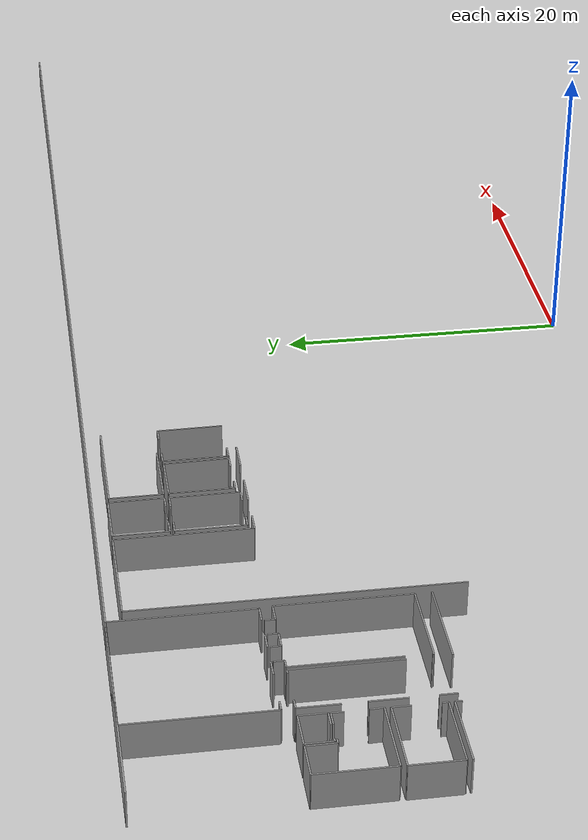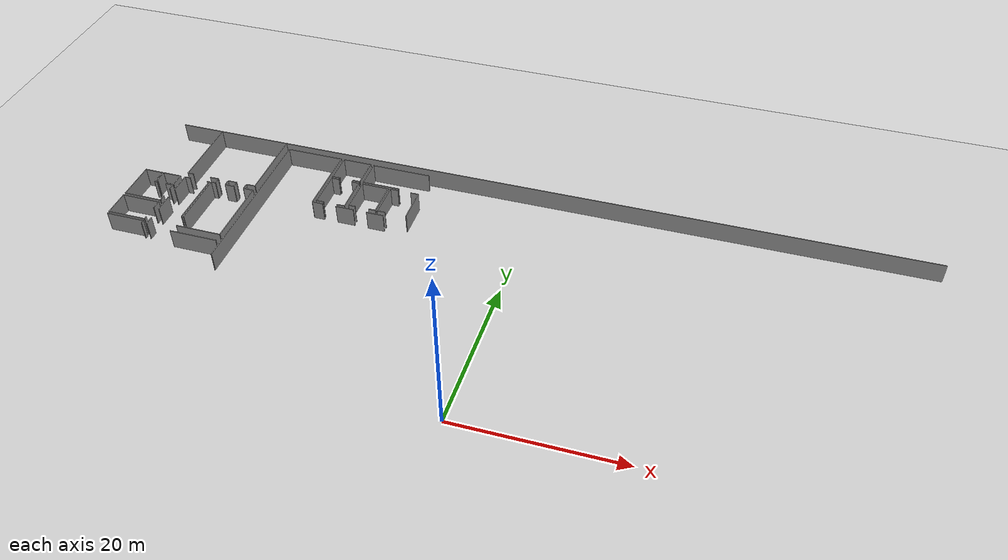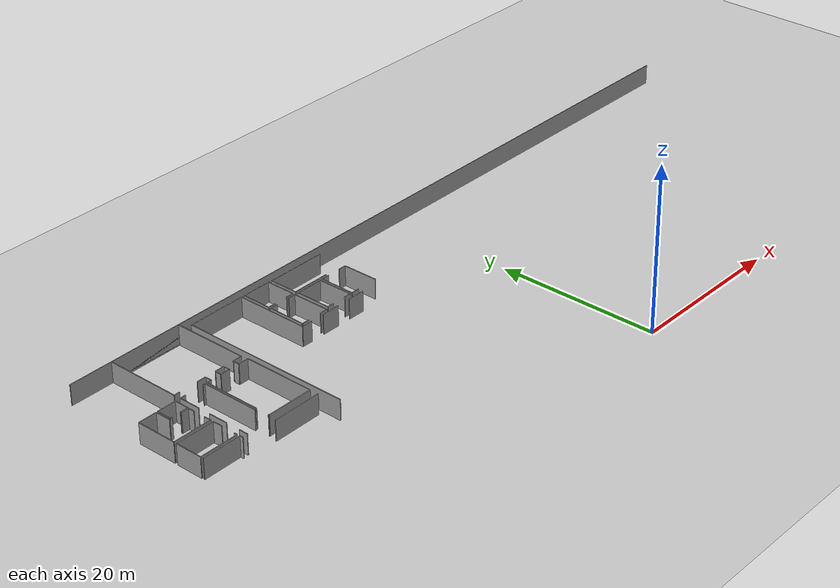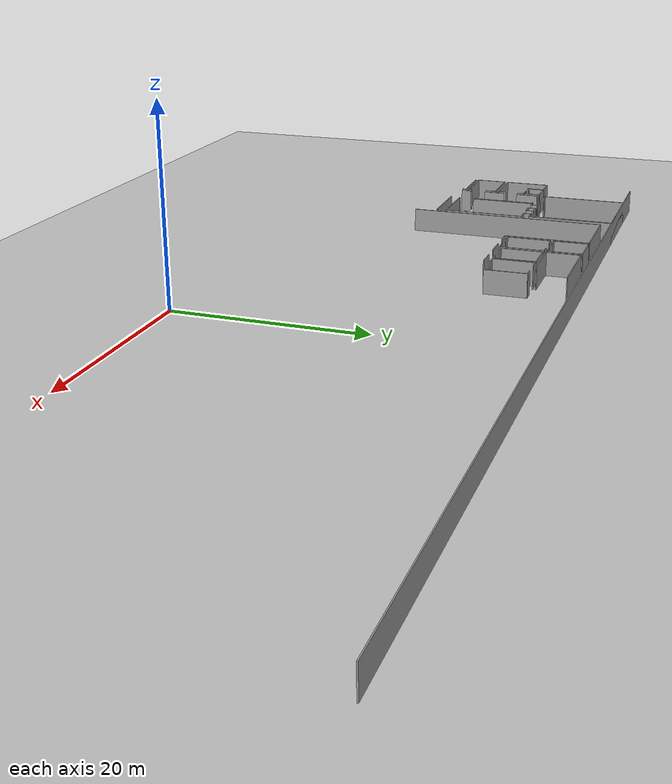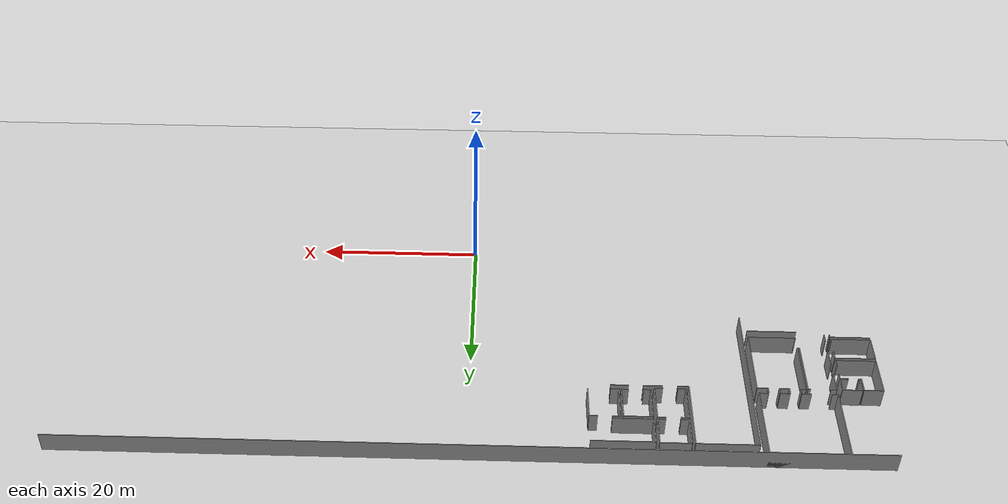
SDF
<sdf version="1.6">
 <world name="default">
  <model name="ground_plane">
   <static>1</static>
   <link name="link">
    <collision name="collision">
     <geometry><plane><normal>0 0 1</normal><size>100 100</size></plane></geometry>
     <surface><friction><ode><mu>100</mu><mu2>50</mu2></ode></friction></surface>
    </collision>
    <visual name="visual">
     <cast_shadows>0</cast_shadows>
     <geometry><plane><normal>0 0 1</normal><size>100 100</size></plane></geometry>
     <material>
      <script><uri>file://media/materials/scripts/gazebo.material</uri><name>Gazebo/Grey</name></script>
     </material>
    </visual>
   </link>
  </model>
  <model name="50053292">
   <static>1</static>
   <link name="Wall_0">
    <collision name="Wall_0_Collision">
     <geometry><box><size>1.1175532962 0.1 2.5</size></box></geometry>
     <pose>0.558776648102 0 1.25 0 0 0</pose>
    </collision>
    <visual name="Wall_0_Visual">
     <pose>0.558776648102 0 1.25 0 0 0</pose>
     <geometry><box><size>1.1175532962 0.1 2.5</size></box></geometry>
     <material>
      <script><uri>file://media/materials/scripts/gazebo.material</uri><name>Gazebo/Grey</name></script>
      <ambient>1 1 1 1</ambient>
     </material>
    </visual>
    <pose>14.6841600569 -9.18695108244 0 0 0 3.14159265359</pose>
   </link>
   <link name="Wall_1">
    <collision name="Wall_1_Collision">
     <geometry><box><size>1.16187948104 0.1 2.5</size></box></geometry>
     <pose>0.58093974052 0 1.25 0 0 0</pose>
    </collision>
    <visual name="Wall_1_Visual">
     <pose>0.58093974052 0 1.25 0 0 0</pose>
     <geometry><box><size>1.16187948104 0.1 2.5</size></box></geometry>
     <material>
      <script><uri>file://media/materials/scripts/gazebo.material</uri><name>Gazebo/Grey</name></script>
      <ambient>1 1 1 1</ambient>
     </material>
    </visual>
    <pose>12.2086251897 -9.18695108244 0 0 0 3.14159265359</pose>
   </link>
   <link name="Wall_2">
    <collision name="Wall_2_Collision">
     <geometry><box><size>1.14016092056 0.1 2.5</size></box></geometry>
     <pose>0.570080460281 0 1.25 0 0 0</pose>
    </collision>
    <visual name="Wall_2_Visual">
     <pose>0.570080460281 0 1.25 0 0 0</pose>
     <geometry><box><size>1.14016092056 0.1 2.5</size></box></geometry>
     <material>
      <script><uri>file://media/materials/scripts/gazebo.material</uri><name>Gazebo/Grey</name></script>
      <ambient>1 1 1 1</ambient>
     </material>
    </visual>
    <pose>9.70337018715 -9.18695108244 0 0 0 3.14159265359</pose>
   </link>
   <link name="Wall_3">
    <collision name="Wall_3_Collision">
     <geometry><box><size>0.717855577923 0.1 2.5</size></box></geometry>
     <pose>0.358927788962 0 1.25 0 0 0</pose>
    </collision>
    <visual name="Wall_3_Visual">
     <pose>0.358927788962 0 1.25 0 0 0</pose>
     <geometry><box><size>0.717855577923 0.1 2.5</size></box></geometry>
     <material>
      <script><uri>file://media/materials/scripts/gazebo.material</uri><name>Gazebo/Grey</name></script>
      <ambient>1 1 1 1</ambient>
     </material>
    </visual>
    <pose>6.18483638049 -9.18695108244 0 0 0 3.14159265359</pose>
   </link>
   <link name="Wall_4">
    <collision name="Wall_4_Collision">
     <geometry><box><size>9.18695108244 0.1 2.5</size></box></geometry>
     <pose>4.59347554122 0 1.25 0 0 0</pose>
    </collision>
    <visual name="Wall_4_Visual">
     <pose>4.59347554122 0 1.25 0 0 0</pose>
     <geometry><box><size>9.18695108244 0.1 2.5</size></box></geometry>
     <material>
      <script><uri>file://media/materials/scripts/gazebo.material</uri><name>Gazebo/Grey</name></script>
      <ambient>1 1 1 1</ambient>
     </material>
    </visual>
    <pose>5.46698080257 -9.18695108244 0 0 0 1.57079632679</pose>
   </link>
   <link name="Wall_5">
    <collision name="Wall_5_Collision">
     <geometry><box><size>9.18885621932 0.1 2.5</size></box></geometry>
     <pose>4.59442810966 0 1.25 0 0 0</pose>
    </collision>
    <visual name="Wall_5_Visual">
     <pose>4.59442810966 0 1.25 0 0 0</pose>
     <geometry><box><size>9.18885621932 0.1 2.5</size></box></geometry>
     <material>
      <script><uri>file://media/materials/scripts/gazebo.material</uri><name>Gazebo/Grey</name></script>
      <ambient>1 1 1 1</ambient>
     </material>
    </visual>
    <pose>5.46698080257 -0.0 0 0 0 0.0</pose>
   </link>
   <link name="Wall_6">
    <collision name="Wall_6_Collision">
     <geometry><box><size>9.18699474177 0.1 2.5</size></box></geometry>
     <pose>4.59349737089 0 1.25 0 0 0</pose>
    </collision>
    <visual name="Wall_6_Visual">
     <pose>4.59349737089 0 1.25 0 0 0</pose>
     <geometry><box><size>9.18699474177 0.1 2.5</size></box></geometry>
     <material>
      <script><uri>file://media/materials/scripts/gazebo.material</uri><name>Gazebo/Grey</name></script>
      <ambient>1 1 1 1</ambient>
     </material>
    </visual>
    <pose>14.6558370219 -0.0 0 0 0 -1.56771337305</pose>
   </link>
   <link name="Wall_11">
    <collision name="Wall_11_Collision">
     <geometry><box><size>5.99368764646 0.1 2.5</size></box></geometry>
     <pose>2.99684382323 0 1.25 0 0 0</pose>
    </collision>
    <visual name="Wall_11_Visual">
     <pose>2.99684382323 0 1.25 0 0 0</pose>
     <geometry><box><size>5.99368764646 0.1 2.5</size></box></geometry>
     <material>
      <script><uri>file://media/materials/scripts/gazebo.material</uri><name>Gazebo/Grey</name></script>
      <ambient>1 1 1 1</ambient>
     </material>
    </visual>
    <pose>14.8546063035 -19.7261683252 0 0 0 3.14159265359</pose>
   </link>
   <link name="Wall_13">
    <collision name="Wall_13_Collision">
     <geometry><box><size>6.97940547028 0.1 2.5</size></box></geometry>
     <pose>3.48970273514 0 1.25 0 0 0</pose>
    </collision>
    <visual name="Wall_13_Visual">
     <pose>3.48970273514 0 1.25 0 0 0</pose>
     <geometry><box><size>6.97940547028 0.1 2.5</size></box></geometry>
     <material>
      <script><uri>file://media/materials/scripts/gazebo.material</uri><name>Gazebo/Grey</name></script>
      <ambient>1 1 1 1</ambient>
     </material>
    </visual>
    <pose>8.86091865701 -16.9900107323 0 0 0 1.57079632679</pose>
   </link>
   <link name="Wall_14">
    <collision name="Wall_14_Collision">
     <geometry><box><size>0.307743111343 0.1 2.5</size></box></geometry>
     <pose>0.153871555671 0 1.25 0 0 0</pose>
    </collision>
    <visual name="Wall_14_Visual">
     <pose>0.153871555671 0 1.25 0 0 0</pose>
     <geometry><box><size>0.307743111343 0.1 2.5</size></box></geometry>
     <material>
      <script><uri>file://media/materials/scripts/gazebo.material</uri><name>Gazebo/Grey</name></script>
      <ambient>1 1 1 1</ambient>
     </material>
    </visual>
    <pose>8.86091865701 -10.010605262 0 0 0 3.14159265359</pose>
   </link>
   <link name="Wall_15">
    <collision name="Wall_15_Collision">
     <geometry><box><size>0.701090373343 0.1 2.5</size></box></geometry>
     <pose>0.350545186672 0 1.25 0 0 0</pose>
    </collision>
    <visual name="Wall_15_Visual">
     <pose>0.350545186672 0 1.25 0 0 0</pose>
     <geometry><box><size>0.701090373343 0.1 2.5</size></box></geometry>
     <material>
      <script><uri>file://media/materials/scripts/gazebo.material</uri><name>Gazebo/Grey</name></script>
      <ambient>1 1 1 1</ambient>
     </material>
    </visual>
    <pose>6.20401475846 -10.010605262 0 0 0 3.14159265359</pose>
   </link>
   <link name="Wall_16">
    <collision name="Wall_16_Collision">
     <geometry><box><size>2.61295874109 0.1 2.5</size></box></geometry>
     <pose>1.30647937054 0 1.25 0 0 0</pose>
    </collision>
    <visual name="Wall_16_Visual">
     <pose>1.30647937054 0 1.25 0 0 0</pose>
     <geometry><box><size>2.61295874109 0.1 2.5</size></box></geometry>
     <material>
      <script><uri>file://media/materials/scripts/gazebo.material</uri><name>Gazebo/Grey</name></script>
      <ambient>1 1 1 1</ambient>
     </material>
    </visual>
    <pose>5.50292438512 -10.010605262 0 0 0 -1.57079632679</pose>
   </link>
   <link name="Wall_17">
    <collision name="Wall_17_Collision">
     <geometry><box><size>2.3640208549 0.1 2.5</size></box></geometry>
     <pose>1.18201042745 0 1.25 0 0 0</pose>
    </collision>
    <visual name="Wall_17_Visual">
     <pose>1.18201042745 0 1.25 0 0 0</pose>
     <geometry><box><size>2.3640208549 0.1 2.5</size></box></geometry>
     <material>
      <script><uri>file://media/materials/scripts/gazebo.material</uri><name>Gazebo/Grey</name></script>
      <ambient>1 1 1 1</ambient>
     </material>
    </visual>
    <pose>5.50292438512 -14.1378938077 0 0 0 -1.57079632679</pose>
   </link>
   <link name="Wall_18">
    <collision name="Wall_18_Collision">
     <geometry><box><size>1.09481866272 0.1 2.5</size></box></geometry>
     <pose>0.54740933136 0 1.25 0 0 0</pose>
    </collision>
    <visual name="Wall_18_Visual">
     <pose>0.54740933136 0 1.25 0 0 0</pose>
     <geometry><box><size>1.09481866272 0.1 2.5</size></box></geometry>
     <material>
      <script><uri>file://media/materials/scripts/gazebo.material</uri><name>Gazebo/Grey</name></script>
      <ambient>1 1 1 1</ambient>
     </material>
    </visual>
    <pose>5.50292438512 -18.2240313967 0 0 0 -1.57079632679</pose>
   </link>
   <link name="Wall_23">
    <collision name="Wall_23_Collision">
     <geometry><box><size>5.71706177089 0.1 2.5</size></box></geometry>
     <pose>2.85853088544 0 1.25 0 0 0</pose>
    </collision>
    <visual name="Wall_23_Visual">
     <pose>2.85853088544 0 1.25 0 0 0</pose>
     <geometry><box><size>5.71706177089 0.1 2.5</size></box></geometry>
     <material>
      <script><uri>file://media/materials/scripts/gazebo.material</uri><name>Gazebo/Grey</name></script>
      <ambient>1 1 1 1</ambient>
     </material>
    </visual>
    <pose>14.8231080403 -18.6576405515 0 0 0 3.14159265359</pose>
   </link>
   <link name="Wall_24">
    <collision name="Wall_24_Collision">
     <geometry><box><size>0.085350132407 0.1 2.5</size></box></geometry>
     <pose>0.0426750662035 0 1.25 0 0 0</pose>
    </collision>
    <visual name="Wall_24_Visual">
     <pose>0.0426750662035 0 1.25 0 0 0</pose>
     <geometry><box><size>0.085350132407 0.1 2.5</size></box></geometry>
     <material>
      <script><uri>file://media/materials/scripts/gazebo.material</uri><name>Gazebo/Grey</name></script>
      <ambient>1 1 1 1</ambient>
     </material>
    </visual>
    <pose>9.10604626942 -18.6576405515 0 0 0 1.57079632679</pose>
   </link>
   <link name="Wall_25">
    <collision name="Wall_25_Collision">
     <geometry><box><size>6.95108243527 0.1 2.5</size></box></geometry>
     <pose>3.47554121764 0 1.25 0 0 0</pose>
    </collision>
    <visual name="Wall_25_Visual">
     <pose>3.47554121764 0 1.25 0 0 0</pose>
     <geometry><box><size>6.95108243527 0.1 2.5</size></box></geometry>
     <material>
      <script><uri>file://media/materials/scripts/gazebo.material</uri><name>Gazebo/Grey</name></script>
      <ambient>1 1 1 1</ambient>
     </material>
    </visual>
    <pose>9.10604626942 -16.9550832227 0 0 0 1.57079632679</pose>
   </link>
   <link name="Wall_26">
    <collision name="Wall_26_Collision">
     <geometry><box><size>0.584495996037 0.1 2.5</size></box></geometry>
     <pose>0.292247998019 0 1.25 0 0 0</pose>
    </collision>
    <visual name="Wall_26_Visual">
     <pose>0.292247998019 0 1.25 0 0 0</pose>
     <geometry><box><size>0.584495996037 0.1 2.5</size></box></geometry>
     <material>
      <script><uri>file://media/materials/scripts/gazebo.material</uri><name>Gazebo/Grey</name></script>
      <ambient>1 1 1 1</ambient>
     </material>
    </visual>
    <pose>9.10604626942 -10.0040007875 0 0 0 0.0</pose>
   </link>
   <link name="Wall_27">
    <collision name="Wall_27_Collision">
     <geometry><box><size>0.676704621227 0.1 2.5</size></box></geometry>
     <pose>0.338352310614 0 1.25 0 0 0</pose>
    </collision>
    <visual name="Wall_27_Visual">
     <pose>0.338352310614 0 1.25 0 0 0</pose>
     <geometry><box><size>0.676704621227 0.1 2.5</size></box></geometry>
     <material>
      <script><uri>file://media/materials/scripts/gazebo.material</uri><name>Gazebo/Grey</name></script>
      <ambient>1 1 1 1</ambient>
     </material>
    </visual>
    <pose>9.69054226546 -10.0040007875 0 0 0 1.57079632679</pose>
   </link>
   <link name="Wall_28">
    <collision name="Wall_28_Collision">
     <geometry><box><size>0.672767338333 0.1 2.5</size></box></geometry>
     <pose>0.336383669167 0 1.25 0 0 0</pose>
    </collision>
    <visual name="Wall_28_Visual">
     <pose>0.336383669167 0 1.25 0 0 0</pose>
     <geometry><box><size>0.672767338333 0.1 2.5</size></box></geometry>
     <material>
      <script><uri>file://media/materials/scripts/gazebo.material</uri><name>Gazebo/Grey</name></script>
      <ambient>1 1 1 1</ambient>
     </material>
    </visual>
    <pose>11.0334097505 -9.32729616623 0 0 0 -1.57079632679</pose>
   </link>
   <link name="Wall_29">
    <collision name="Wall_29_Collision">
     <geometry><box><size>1.1750884301 0.1 2.5</size></box></geometry>
     <pose>0.587544215052 0 1.25 0 0 0</pose>
    </collision>
    <visual name="Wall_29_Visual">
     <pose>0.587544215052 0 1.25 0 0 0</pose>
     <geometry><box><size>1.1750884301 0.1 2.5</size></box></geometry>
     <material>
      <script><uri>file://media/materials/scripts/gazebo.material</uri><name>Gazebo/Grey</name></script>
      <ambient>1 1 1 1</ambient>
     </material>
    </visual>
    <pose>11.0334097505 -10.0000635046 0 0 0 0.0</pose>
   </link>
   <link name="Wall_30">
    <collision name="Wall_30_Collision">
     <geometry><box><size>0.658923343642 0.1 2.5</size></box></geometry>
     <pose>0.329461671821 0 1.25 0 0 0</pose>
    </collision>
    <visual name="Wall_30_Visual">
     <pose>0.329461671821 0 1.25 0 0 0</pose>
     <geometry><box><size>0.658923343642 0.1 2.5</size></box></geometry>
     <material>
      <script><uri>file://media/materials/scripts/gazebo.material</uri><name>Gazebo/Grey</name></script>
      <ambient>1 1 1 1</ambient>
     </material>
    </visual>
    <pose>12.2084981806 -10.0000635046 0 0 0 1.57079632679</pose>
   </link>
   <link name="Wall_31">
    <collision name="Wall_31_Collision">
     <geometry><box><size>0.664384736043 0.1 2.5</size></box></geometry>
     <pose>0.332192368022 0 1.25 0 0 0</pose>
    </collision>
    <visual name="Wall_31_Visual">
     <pose>0.332192368022 0 1.25 0 0 0</pose>
     <geometry><box><size>0.664384736043 0.1 2.5</size></box></geometry>
     <material>
      <script><uri>file://media/materials/scripts/gazebo.material</uri><name>Gazebo/Grey</name></script>
      <ambient>1 1 1 1</ambient>
     </material>
    </visual>
    <pose>13.5263448679 -9.34114016092 0 0 0 -1.57079632679</pose>
   </link>
   <link name="Wall_32">
    <collision name="Wall_32_Collision">
     <geometry><box><size>1.29041271615 0.1 2.5</size></box></geometry>
     <pose>0.645206358077 0 1.25 0 0 0</pose>
    </collision>
    <visual name="Wall_32_Visual">
     <pose>0.645206358077 0 1.25 0 0 0</pose>
     <geometry><box><size>1.29041271615 0.1 2.5</size></box></geometry>
     <material>
      <script><uri>file://media/materials/scripts/gazebo.material</uri><name>Gazebo/Grey</name></script>
      <ambient>1 1 1 1</ambient>
     </material>
    </visual>
    <pose>13.5263448679 -10.005524897 0 0 0 0.0</pose>
   </link>
   <link name="Wall_33">
    <collision name="Wall_33_Collision">
     <geometry><box><size>8.65211798505 0.1 2.5</size></box></geometry>
     <pose>4.32605899253 0 1.25 0 0 0</pose>
    </collision>
    <visual name="Wall_33_Visual">
     <pose>4.32605899253 0 1.25 0 0 0</pose>
     <geometry><box><size>8.65211798505 0.1 2.5</size></box></geometry>
     <material>
      <script><uri>file://media/materials/scripts/gazebo.material</uri><name>Gazebo/Grey</name></script>
      <ambient>1 1 1 1</ambient>
     </material>
    </visual>
    <pose>14.816757584 -10.005524897 0 0 0 -1.57006234965</pose>
   </link>
   <link name="Wall_34">
    <collision name="Wall_34_Collision">
     <geometry><box><size>4.82431462701 0.1 2.5</size></box></geometry>
     <pose>2.4121573135 0 1.25 0 0 0</pose>
    </collision>
    <visual name="Wall_34_Visual">
     <pose>2.4121573135 0 1.25 0 0 0</pose>
     <geometry><box><size>4.82431462701 0.1 2.5</size></box></geometry>
     <material>
      <script><uri>file://media/materials/scripts/gazebo.material</uri><name>Gazebo/Grey</name></script>
      <ambient>1 1 1 1</ambient>
     </material>
    </visual>
    <pose>4.86114727343 -14.9540544488 0 0 0 3.14159265359</pose>
   </link>
   <link name="Wall_35">
    <collision name="Wall_35_Collision">
     <geometry><box><size>4.92871612825 0.1 2.5</size></box></geometry>
     <pose>2.46435806413 0 1.25 0 0 0</pose>
    </collision>
    <visual name="Wall_35_Visual">
     <pose>2.46435806413 0 1.25 0 0 0</pose>
     <geometry><box><size>4.92871612825 0.1 2.5</size></box></geometry>
     <material>
      <script><uri>file://media/materials/scripts/gazebo.material</uri><name>Gazebo/Grey</name></script>
      <ambient>1 1 1 1</ambient>
     </material>
    </visual>
    <pose>0.0368326464256 -14.9540544488 0 0 0 1.57079632679</pose>
   </link>
   <link name="Wall_36">
    <collision name="Wall_36_Collision">
     <geometry><box><size>2.28654528828 0.1 2.5</size></box></geometry>
     <pose>1.14327264414 0 1.25 0 0 0</pose>
    </collision>
    <visual name="Wall_36_Visual">
     <pose>1.14327264414 0 1.25 0 0 0</pose>
     <geometry><box><size>2.28654528828 0.1 2.5</size></box></geometry>
     <material>
      <script><uri>file://media/materials/scripts/gazebo.material</uri><name>Gazebo/Grey</name></script>
      <ambient>1 1 1 1</ambient>
     </material>
    </visual>
    <pose>0.0368326464256 -10.0253383206 0 0 0 0.0</pose>
   </link>
   <link name="Wall_37">
    <collision name="Wall_37_Collision">
     <geometry><box><size>1.86906629241 0.1 2.5</size></box></geometry>
     <pose>0.934533146207 0 1.25 0 0 0</pose>
    </collision>
    <visual name="Wall_37_Visual">
     <pose>0.934533146207 0 1.25 0 0 0</pose>
     <geometry><box><size>1.86906629241 0.1 2.5</size></box></geometry>
     <material>
      <script><uri>file://media/materials/scripts/gazebo.material</uri><name>Gazebo/Grey</name></script>
      <ambient>1 1 1 1</ambient>
     </material>
    </visual>
    <pose>2.3233779347 -10.0253383206 0 0 0 -1.57079632679</pose>
   </link>
   <link name="Wall_38">
    <collision name="Wall_38_Collision">
     <geometry><box><size>0.342543611759 0.1 2.5</size></box></geometry>
     <pose>0.171271805879 0 1.25 0 0 0</pose>
    </collision>
    <visual name="Wall_38_Visual">
     <pose>0.171271805879 0 1.25 0 0 0</pose>
     <geometry><box><size>0.342543611759 0.1 2.5</size></box></geometry>
     <material>
      <script><uri>file://media/materials/scripts/gazebo.material</uri><name>Gazebo/Grey</name></script>
      <ambient>1 1 1 1</ambient>
     </material>
    </visual>
    <pose>2.3233779347 -11.894404613 0 0 0 0.0</pose>
   </link>
   <link name="Wall_39">
    <collision name="Wall_39_Collision">
     <geometry><box><size>0.979748394922 0.1 2.5</size></box></geometry>
     <pose>0.489874197461 0 1.25 0 0 0</pose>
    </collision>
    <visual name="Wall_39_Visual">
     <pose>0.489874197461 0 1.25 0 0 0</pose>
     <geometry><box><size>0.979748394922 0.1 2.5</size></box></geometry>
     <material>
      <script><uri>file://media/materials/scripts/gazebo.material</uri><name>Gazebo/Grey</name></script>
      <ambient>1 1 1 1</ambient>
     </material>
    </visual>
    <pose>3.84621735072 -11.894404613 0 0 0 0.0</pose>
   </link>
   <link name="Wall_40">
    <collision name="Wall_40_Collision">
     <geometry><box><size>0.760784662378 0.1 2.5</size></box></geometry>
     <pose>0.380392331189 0 1.25 0 0 0</pose>
    </collision>
    <visual name="Wall_40_Visual">
     <pose>0.380392331189 0 1.25 0 0 0</pose>
     <geometry><box><size>0.760784662378 0.1 2.5</size></box></geometry>
     <material>
      <script><uri>file://media/materials/scripts/gazebo.material</uri><name>Gazebo/Grey</name></script>
      <ambient>1 1 1 1</ambient>
     </material>
    </visual>
    <pose>4.82596574564 -11.894404613 0 0 0 -1.57079632679</pose>
   </link>
   <link name="Wall_41">
    <collision name="Wall_41_Collision">
     <geometry><box><size>0.873261668576 0.1 2.5</size></box></geometry>
     <pose>0.436630834288 0 1.25 0 0 0</pose>
    </collision>
    <visual name="Wall_41_Visual">
     <pose>0.436630834288 0 1.25 0 0 0</pose>
     <geometry><box><size>0.873261668576 0.1 2.5</size></box></geometry>
     <material>
      <script><uri>file://media/materials/scripts/gazebo.material</uri><name>Gazebo/Grey</name></script>
      <ambient>1 1 1 1</ambient>
     </material>
    </visual>
    <pose>4.82596574564 -14.0815017559 0 0 0 -1.53049792243</pose>
   </link>
   <link name="Wall_42">
    <collision name="Wall_42_Collision">
     <geometry><box><size>0.990163143222 0.1 2.5</size></box></geometry>
     <pose>0.495081571611 0 1.25 0 0 0</pose>
    </collision>
    <visual name="Wall_42_Visual">
     <pose>0.495081571611 0 1.25 0 0 0</pose>
     <geometry><box><size>0.990163143222 0.1 2.5</size></box></geometry>
     <material>
      <script><uri>file://media/materials/scripts/gazebo.material</uri><name>Gazebo/Grey</name></script>
      <ambient>1 1 1 1</ambient>
     </material>
    </visual>
    <pose>4.85238364376 -11.759901949 0 0 0 3.14159265359</pose>
   </link>
   <link name="Wall_43">
    <collision name="Wall_43_Collision">
     <geometry><box><size>0.206389829109 0.1 2.5</size></box></geometry>
     <pose>0.103194914555 0 1.25 0 0 0</pose>
    </collision>
    <visual name="Wall_43_Visual">
     <pose>0.103194914555 0 1.25 0 0 0</pose>
     <geometry><box><size>0.206389829109 0.1 2.5</size></box></geometry>
     <material>
      <script><uri>file://media/materials/scripts/gazebo.material</uri><name>Gazebo/Grey</name></script>
      <ambient>1 1 1 1</ambient>
     </material>
    </visual>
    <pose>2.69373654497 -11.759901949 0 0 0 3.14159265359</pose>
   </link>
   <link name="Wall_44">
    <collision name="Wall_44_Collision">
     <geometry><box><size>1.74701052271 0.1 2.5</size></box></geometry>
     <pose>0.873505261353 0 1.25 0 0 0</pose>
    </collision>
    <visual name="Wall_44_Visual">
     <pose>0.873505261353 0 1.25 0 0 0</pose>
     <geometry><box><size>1.74701052271 0.1 2.5</size></box></geometry>
     <material>
      <script><uri>file://media/materials/scripts/gazebo.material</uri><name>Gazebo/Grey</name></script>
      <ambient>1 1 1 1</ambient>
     </material>
    </visual>
    <pose>2.48734671586 -11.759901949 0 0 0 1.57079632679</pose>
   </link>
   <link name="Wall_45">
    <collision name="Wall_45_Collision">
     <geometry><box><size>2.36262375452 0.1 2.5</size></box></geometry>
     <pose>1.18131187726 0 1.25 0 0 0</pose>
    </collision>
    <visual name="Wall_45_Visual">
     <pose>1.18131187726 0 1.25 0 0 0</pose>
     <geometry><box><size>2.36262375452 0.1 2.5</size></box></geometry>
     <material>
      <script><uri>file://media/materials/scripts/gazebo.material</uri><name>Gazebo/Grey</name></script>
      <ambient>1 1 1 1</ambient>
     </material>
    </visual>
    <pose>2.48734671586 -10.0128914262 0 0 0 0.0</pose>
   </link>
   <link name="Wall_46">
    <collision name="Wall_46_Collision">
     <geometry><box><size>1.74701218938 0.1 2.5</size></box></geometry>
     <pose>0.873506094691 0 1.25 0 0 0</pose>
    </collision>
    <visual name="Wall_46_Visual">
     <pose>0.873506094691 0 1.25 0 0 0</pose>
     <geometry><box><size>1.74701218938 0.1 2.5</size></box></geometry>
     <material>
      <script><uri>file://media/materials/scripts/gazebo.material</uri><name>Gazebo/Grey</name></script>
      <ambient>1 1 1 1</ambient>
     </material>
    </visual>
    <pose>4.84997047038 -10.0128914262 0 0 0 -1.56941501179</pose>
   </link>
   <link name="Wall_47">
    <collision name="Wall_47_Collision">
     <geometry><box><size>4.80729540417 0.1 2.5</size></box></geometry>
     <pose>2.40364770209 0 1.25 0 0 0</pose>
    </collision>
    <visual name="Wall_47_Visual">
     <pose>2.40364770209 0 1.25 0 0 0</pose>
     <geometry><box><size>4.80729540417 0.1 2.5</size></box></geometry>
     <material>
      <script><uri>file://media/materials/scripts/gazebo.material</uri><name>Gazebo/Grey</name></script>
      <ambient>1 1 1 1</ambient>
     </material>
    </visual>
    <pose>4.82342556313 -18.6295715347 0 0 0 3.14159265359</pose>
   </link>
   <link name="Wall_48">
    <collision name="Wall_48_Collision">
     <geometry><box><size>3.29677587335 0.1 2.5</size></box></geometry>
     <pose>1.64838793667 0 1.25 0 0 0</pose>
    </collision>
    <visual name="Wall_48_Visual">
     <pose>1.64838793667 0 1.25 0 0 0</pose>
     <geometry><box><size>3.29677587335 0.1 2.5</size></box></geometry>
     <material>
      <script><uri>file://media/materials/scripts/gazebo.material</uri><name>Gazebo/Grey</name></script>
      <ambient>1 1 1 1</ambient>
     </material>
    </visual>
    <pose>0.0161301589519 -18.6295715347 0 0 0 1.57079632679</pose>
   </link>
   <link name="Wall_49">
    <collision name="Wall_49_Collision">
     <geometry><box><size>4.81453492433 0.1 2.5</size></box></geometry>
     <pose>2.40726746217 0 1.25 0 0 0</pose>
    </collision>
    <visual name="Wall_49_Visual">
     <pose>2.40726746217 0 1.25 0 0 0</pose>
     <geometry><box><size>4.81453492433 0.1 2.5</size></box></geometry>
     <material>
      <script><uri>file://media/materials/scripts/gazebo.material</uri><name>Gazebo/Grey</name></script>
      <ambient>1 1 1 1</ambient>
     </material>
    </visual>
    <pose>0.0161301589519 -15.3327956614 0 0 0 0.0</pose>
   </link>
   <link name="Wall_50">
    <collision name="Wall_50_Collision">
     <geometry><box><size>1.17635852136 0.1 2.5</size></box></geometry>
     <pose>0.58817926068 0 1.25 0 0 0</pose>
    </collision>
    <visual name="Wall_50_Visual">
     <pose>0.58817926068 0 1.25 0 0 0</pose>
     <geometry><box><size>1.17635852136 0.1 2.5</size></box></geometry>
     <material>
      <script><uri>file://media/materials/scripts/gazebo.material</uri><name>Gazebo/Grey</name></script>
      <ambient>1 1 1 1</ambient>
     </material>
    </visual>
    <pose>4.83066508329 -15.3327956614 0 0 0 -1.57079632679</pose>
   </link>
   <link name="Wall_51">
    <collision name="Wall_51_Collision">
     <geometry><box><size>0.374619869722 0.1 2.5</size></box></geometry>
     <pose>0.187309934861 0 1.25 0 0 0</pose>
    </collision>
    <visual name="Wall_51_Visual">
     <pose>0.187309934861 0 1.25 0 0 0</pose>
     <geometry><box><size>0.374619869722 0.1 2.5</size></box></geometry>
     <material>
      <script><uri>file://media/materials/scripts/gazebo.material</uri><name>Gazebo/Grey</name></script>
      <ambient>1 1 1 1</ambient>
     </material>
    </visual>
    <pose>4.83066508329 -18.2550216233 0 0 0 -1.59012250628</pose>
   </link>
   <link name="Wall_57">
    <collision name="Wall_57_Collision">
     <geometry><box><size>4.82698181864 0.1 2.5</size></box></geometry>
     <pose>2.41349090932 0 1.25 0 0 0</pose>
    </collision>
    <visual name="Wall_57_Visual">
     <pose>2.41349090932 0 1.25 0 0 0</pose>
     <geometry><box><size>4.82698181864 0.1 2.5</size></box></geometry>
     <material>
      <script><uri>file://media/materials/scripts/gazebo.material</uri><name>Gazebo/Grey</name></script>
      <ambient>1 1 1 1</ambient>
     </material>
    </visual>
    <pose>0.0116848395557 -18.9731312195 0 0 0 0.0</pose>
   </link>
   <link name="Wall_58">
    <collision name="Wall_58_Collision">
     <geometry><box><size>0.434244200446 0.1 2.5</size></box></geometry>
     <pose>0.217122100223 0 1.25 0 0 0</pose>
    </collision>
    <visual name="Wall_58_Visual">
     <pose>0.217122100223 0 1.25 0 0 0</pose>
     <geometry><box><size>0.434244200446 0.1 2.5</size></box></geometry>
     <material>
      <script><uri>file://media/materials/scripts/gazebo.material</uri><name>Gazebo/Grey</name></script>
      <ambient>1 1 1 1</ambient>
     </material>
    </visual>
    <pose>4.8386666582 -18.9731312195 0 0 0 -1.57079632679</pose>
   </link>
   <link name="Wall_207">
    <collision name="Wall_207_Collision">
     <geometry><box><size>2.14581917711 0.1 2.5</size></box></geometry>
     <pose>1.07290958855 0 1.25 0 0 0</pose>
    </collision>
    <visual name="Wall_207_Visual">
     <pose>1.07290958855 0 1.25 0 0 0</pose>
     <geometry><box><size>2.14581917711 0.1 2.5</size></box></geometry>
     <material>
      <script><uri>file://media/materials/scripts/gazebo.material</uri><name>Gazebo/Grey</name></script>
      <ambient>1 1 1 1</ambient>
     </material>
    </visual>
    <pose>31.9845810922 -9.98291727261 0 0 0 3.14159265359</pose>
   </link>
   <link name="Wall_208">
    <collision name="Wall_208_Collision">
     <geometry><box><size>2.2856562244 0.1 2.5</size></box></geometry>
     <pose>1.1428281122 0 1.25 0 0 0</pose>
    </collision>
    <visual name="Wall_208_Visual">
     <pose>1.1428281122 0 1.25 0 0 0</pose>
     <geometry><box><size>2.2856562244 0.1 2.5</size></box></geometry>
     <material>
      <script><uri>file://media/materials/scripts/gazebo.material</uri><name>Gazebo/Grey</name></script>
      <ambient>1 1 1 1</ambient>
     </material>
    </visual>
    <pose>28.1388717779 -9.98291727261 0 0 0 3.14159265359</pose>
   </link>
   <link name="Wall_209">
    <collision name="Wall_209_Collision">
     <geometry><box><size>1.34629673142 0.1 2.5</size></box></geometry>
     <pose>0.67314836571 0 1.25 0 0 0</pose>
    </collision>
    <visual name="Wall_209_Visual">
     <pose>0.67314836571 0 1.25 0 0 0</pose>
     <geometry><box><size>1.34629673142 0.1 2.5</size></box></geometry>
     <material>
      <script><uri>file://media/materials/scripts/gazebo.material</uri><name>Gazebo/Grey</name></script>
      <ambient>1 1 1 1</ambient>
     </material>
    </visual>
    <pose>24.1201760346 -9.98291727261 0 0 0 3.14159265359</pose>
   </link>
   <link name="Wall_210">
    <collision name="Wall_210_Collision">
     <geometry><box><size>8.92874153008 0.1 2.5</size></box></geometry>
     <pose>4.46437076504 0 1.25 0 0 0</pose>
    </collision>
    <visual name="Wall_210_Visual">
     <pose>4.46437076504 0 1.25 0 0 0</pose>
     <geometry><box><size>8.92874153008 0.1 2.5</size></box></geometry>
     <material>
      <script><uri>file://media/materials/scripts/gazebo.material</uri><name>Gazebo/Grey</name></script>
      <ambient>1 1 1 1</ambient>
     </material>
    </visual>
    <pose>22.7738793032 -9.98291727261 0 0 0 1.57079632679</pose>
   </link>
   <link name="Wall_211">
    <collision name="Wall_211_Collision">
     <geometry><box><size>7.25222107208 0.1 2.5</size></box></geometry>
     <pose>3.62611053604 0 1.25 0 0 0</pose>
    </collision>
    <visual name="Wall_211_Visual">
     <pose>3.62611053604 0 1.25 0 0 0</pose>
     <geometry><box><size>7.25222107208 0.1 2.5</size></box></geometry>
     <material>
      <script><uri>file://media/materials/scripts/gazebo.material</uri><name>Gazebo/Grey</name></script>
      <ambient>1 1 1 1</ambient>
     </material>
    </visual>
    <pose>22.7738793032 -1.05417574253 0 0 0 3.14159265359</pose>
   </link>
   <link name="Wall_212">
    <collision name="Wall_212_Collision">
     <geometry><box><size>21.0497304231 0.1 2.5</size></box></geometry>
     <pose>10.5248652116 0 1.25 0 0 0</pose>
    </collision>
    <visual name="Wall_212_Visual">
     <pose>10.5248652116 0 1.25 0 0 0</pose>
     <geometry><box><size>21.0497304231 0.1 2.5</size></box></geometry>
     <material>
      <script><uri>file://media/materials/scripts/gazebo.material</uri><name>Gazebo/Grey</name></script>
      <ambient>1 1 1 1</ambient>
     </material>
    </visual>
    <pose>15.5216582311 -1.05417574253 0 0 0 -1.57079632679</pose>
   </link>
   <link name="Wall_225">
    <collision name="Wall_225_Collision">
     <geometry><box><size>0.990671179724 0.1 2.5</size></box></geometry>
     <pose>0.495335589862 0 1.25 0 0 0</pose>
    </collision>
    <visual name="Wall_225_Visual">
     <pose>0.495335589862 0 1.25 0 0 0</pose>
     <geometry><box><size>0.990671179724 0.1 2.5</size></box></geometry>
     <material>
      <script><uri>file://media/materials/scripts/gazebo.material</uri><name>Gazebo/Grey</name></script>
      <ambient>1 1 1 1</ambient>
     </material>
    </visual>
    <pose>26.8381713226 -9.60188989579 0 0 0 3.14159265359</pose>
   </link>
   <link name="Wall_226">
    <collision name="Wall_226_Collision">
     <geometry><box><size>0.920181115013 0.1 2.5</size></box></geometry>
     <pose>0.460090557507 0 1.25 0 0 0</pose>
    </collision>
    <visual name="Wall_226_Visual">
     <pose>0.460090557507 0 1.25 0 0 0</pose>
     <geometry><box><size>0.920181115013 0.1 2.5</size></box></geometry>
     <material>
      <script><uri>file://media/materials/scripts/gazebo.material</uri><name>Gazebo/Grey</name></script>
      <ambient>1 1 1 1</ambient>
     </material>
    </visual>
    <pose>24.0827083426 -9.60188989579 0 0 0 3.14159265359</pose>
   </link>
   <link name="Wall_227">
    <collision name="Wall_227_Collision">
     <geometry><box><size>4.60916116823 0.1 2.5</size></box></geometry>
     <pose>2.30458058411 0 1.25 0 0 0</pose>
    </collision>
    <visual name="Wall_227_Visual">
     <pose>2.30458058411 0 1.25 0 0 0</pose>
     <geometry><box><size>4.60916116823 0.1 2.5</size></box></geometry>
     <material>
      <script><uri>file://media/materials/scripts/gazebo.material</uri><name>Gazebo/Grey</name></script>
      <ambient>1 1 1 1</ambient>
     </material>
    </visual>
    <pose>23.1625272276 -9.60188989579 0 0 0 1.57079632679</pose>
   </link>
   <link name="Wall_228">
    <collision name="Wall_228_Collision">
     <geometry><box><size>0.963999263347 0.1 2.5</size></box></geometry>
     <pose>0.481999631674 0 1.25 0 0 0</pose>
    </collision>
    <visual name="Wall_228_Visual">
     <pose>0.481999631674 0 1.25 0 0 0</pose>
     <geometry><box><size>0.963999263347 0.1 2.5</size></box></geometry>
     <material>
      <script><uri>file://media/materials/scripts/gazebo.material</uri><name>Gazebo/Grey</name></script>
      <ambient>1 1 1 1</ambient>
     </material>
    </visual>
    <pose>23.1625272276 -4.99272872756 0 0 0 0.0</pose>
   </link>
   <link name="Wall_229">
    <collision name="Wall_229_Collision">
     <geometry><box><size>0.952568442043 0.1 2.5</size></box></geometry>
     <pose>0.476284221021 0 1.25 0 0 0</pose>
    </collision>
    <visual name="Wall_229_Visual">
     <pose>0.476284221021 0 1.25 0 0 0</pose>
     <geometry><box><size>0.952568442043 0.1 2.5</size></box></geometry>
     <material>
      <script><uri>file://media/materials/scripts/gazebo.material</uri><name>Gazebo/Grey</name></script>
      <ambient>1 1 1 1</ambient>
     </material>
    </visual>
    <pose>25.8475001429 -4.99272872756 0 0 0 0.0</pose>
   </link>
   <link name="Wall_230">
    <collision name="Wall_230_Collision">
     <geometry><box><size>4.60931865825 0.1 2.5</size></box></geometry>
     <pose>2.30465932913 0 1.25 0 0 0</pose>
    </collision>
    <visual name="Wall_230_Visual">
     <pose>2.30465932913 0 1.25 0 0 0</pose>
     <geometry><box><size>4.60931865825 0.1 2.5</size></box></geometry>
     <material>
      <script><uri>file://media/materials/scripts/gazebo.material</uri><name>Gazebo/Grey</name></script>
      <ambient>1 1 1 1</ambient>
     </material>
    </visual>
    <pose>26.8000685849 -4.99272872756 0 0 0 -1.56252977495</pose>
   </link>
   <link name="Wall_231">
    <collision name="Wall_231_Collision">
     <geometry><box><size>0.960824035207 0.1 2.5</size></box></geometry>
     <pose>0.480412017603 0 1.25 0 0 0</pose>
    </collision>
    <visual name="Wall_231_Visual">
     <pose>0.480412017603 0 1.25 0 0 0</pose>
     <geometry><box><size>0.960824035207 0.1 2.5</size></box></geometry>
     <material>
      <script><uri>file://media/materials/scripts/gazebo.material</uri><name>Gazebo/Grey</name></script>
      <ambient>1 1 1 1</ambient>
     </material>
    </visual>
    <pose>26.8140395887 -4.68600168922 0 0 0 3.14159265359</pose>
   </link>
   <link name="Wall_232">
    <collision name="Wall_232_Collision">
     <geometry><box><size>0.971873829135 0.1 2.5</size></box></geometry>
     <pose>0.485936914567 0 1.25 0 0 0</pose>
    </collision>
    <visual name="Wall_232_Visual">
     <pose>0.485936914567 0 1.25 0 0 0</pose>
     <geometry><box><size>0.971873829135 0.1 2.5</size></box></geometry>
     <material>
      <script><uri>file://media/materials/scripts/gazebo.material</uri><name>Gazebo/Grey</name></script>
      <ambient>1 1 1 1</ambient>
     </material>
    </visual>
    <pose>24.1317338651 -4.68600168922 0 0 0 3.14159265359</pose>
   </link>
   <link name="Wall_233">
    <collision name="Wall_233_Collision">
     <geometry><box><size>3.62572950867 0.1 2.5</size></box></geometry>
     <pose>1.81286475433 0 1.25 0 0 0</pose>
    </collision>
    <visual name="Wall_233_Visual">
     <pose>1.81286475433 0 1.25 0 0 0</pose>
     <geometry><box><size>3.62572950867 0.1 2.5</size></box></geometry>
     <material>
      <script><uri>file://media/materials/scripts/gazebo.material</uri><name>Gazebo/Grey</name></script>
      <ambient>1 1 1 1</ambient>
     </material>
    </visual>
    <pose>23.1598600359 -4.68600168922 0 0 0 1.57079632679</pose>
   </link>
   <link name="Wall_234">
    <collision name="Wall_234_Collision">
     <geometry><box><size>3.64465386838 0.1 2.5</size></box></geometry>
     <pose>1.82232693419 0 1.25 0 0 0</pose>
    </collision>
    <visual name="Wall_234_Visual">
     <pose>1.82232693419 0 1.25 0 0 0</pose>
     <geometry><box><size>3.64465386838 0.1 2.5</size></box></geometry>
     <material>
      <script><uri>file://media/materials/scripts/gazebo.material</uri><name>Gazebo/Grey</name></script>
      <ambient>1 1 1 1</ambient>
     </material>
    </visual>
    <pose>23.1598600359 -1.06027218056 0 0 0 0.0</pose>
   </link>
   <link name="Wall_235">
    <collision name="Wall_235_Collision">
     <geometry><box><size>3.6257420218 0.1 2.5</size></box></geometry>
     <pose>1.8128710109 0 1.25 0 0 0</pose>
    </collision>
    <visual name="Wall_235_Visual">
     <pose>1.8128710109 0 1.25 0 0 0</pose>
     <geometry><box><size>3.6257420218 0.1 2.5</size></box></geometry>
     <material>
      <script><uri>file://media/materials/scripts/gazebo.material</uri><name>Gazebo/Grey</name></script>
      <ambient>1 1 1 1</ambient>
     </material>
    </visual>
    <pose>26.8045139043 -1.06027218056 0 0 0 -1.56816908654</pose>
   </link>
   <link name="Wall_236">
    <collision name="Wall_236_Collision">
     <geometry><box><size>0.872425683785 0.1 2.5</size></box></geometry>
     <pose>0.436212841893 0 1.25 0 0 0</pose>
    </collision>
    <visual name="Wall_236_Visual">
     <pose>0.436212841893 0 1.25 0 0 0</pose>
     <geometry><box><size>0.872425683785 0.1 2.5</size></box></geometry>
     <material>
      <script><uri>file://media/materials/scripts/gazebo.material</uri><name>Gazebo/Grey</name></script>
      <ambient>1 1 1 1</ambient>
     </material>
    </visual>
    <pose>30.7362083966 -9.33237653125 0 0 0 3.14159265359</pose>
   </link>
   <link name="Wall_237">
    <collision name="Wall_237_Collision">
     <geometry><box><size>0.817938768901 0.1 2.5</size></box></geometry>
     <pose>0.40896938445 0 1.25 0 0 0</pose>
    </collision>
    <visual name="Wall_237_Visual">
     <pose>0.40896938445 0 1.25 0 0 0</pose>
     <geometry><box><size>0.817938768901 0.1 2.5</size></box></geometry>
     <material>
      <script><uri>file://media/materials/scripts/gazebo.material</uri><name>Gazebo/Grey</name></script>
      <ambient>1 1 1 1</ambient>
     </material>
    </visual>
    <pose>28.0993719399 -9.33237653125 0 0 0 3.14159265359</pose>
   </link>
   <link name="Wall_238">
    <collision name="Wall_238_Collision">
     <geometry><box><size>4.32313661737 0.1 2.5</size></box></geometry>
     <pose>2.16156830868 0 1.25 0 0 0</pose>
    </collision>
    <visual name="Wall_238_Visual">
     <pose>2.16156830868 0 1.25 0 0 0</pose>
     <geometry><box><size>4.32313661737 0.1 2.5</size></box></geometry>
     <material>
      <script><uri>file://media/materials/scripts/gazebo.material</uri><name>Gazebo/Grey</name></script>
      <ambient>1 1 1 1</ambient>
     </material>
    </visual>
    <pose>27.281433171 -9.33237653125 0 0 0 1.57079632679</pose>
   </link>
   <link name="Wall_239">
    <collision name="Wall_239_Collision">
     <geometry><box><size>3.39292178143 0.1 2.5</size></box></geometry>
     <pose>1.69646089071 0 1.25 0 0 0</pose>
    </collision>
    <visual name="Wall_239_Visual">
     <pose>1.69646089071 0 1.25 0 0 0</pose>
     <geometry><box><size>3.39292178143 0.1 2.5</size></box></geometry>
     <material>
      <script><uri>file://media/materials/scripts/gazebo.material</uri><name>Gazebo/Grey</name></script>
      <ambient>1 1 1 1</ambient>
     </material>
    </visual>
    <pose>27.281433171 -5.00923991389 0 0 0 0.0</pose>
   </link>
   <link name="Wall_240">
    <collision name="Wall_240_Collision">
     <geometry><box><size>4.32357907999 0.1 2.5</size></box></geometry>
     <pose>2.16178954 0 1.25 0 0 0</pose>
    </collision>
    <visual name="Wall_240_Visual">
     <pose>2.16178954 0 1.25 0 0 0</pose>
     <geometry><box><size>4.32357907999 0.1 2.5</size></box></geometry>
     <material>
      <script><uri>file://media/materials/scripts/gazebo.material</uri><name>Gazebo/Grey</name></script>
      <ambient>1 1 1 1</ambient>
     </material>
    </visual>
    <pose>30.6743549524 -5.00923991389 0 0 0 -1.55648976432</pose>
   </link>
   <link name="Wall_242">
    <collision name="Wall_242_Collision">
     <geometry><box><size>0.982923623062 0.1 2.5</size></box></geometry>
     <pose>0.491461811531 0 1.25 0 0 0</pose>
    </collision>
    <visual name="Wall_242_Visual">
     <pose>0.491461811531 0 1.25 0 0 0</pose>
     <geometry><box><size>0.982923623062 0.1 2.5</size></box></geometry>
     <material>
      <script><uri>file://media/materials/scripts/gazebo.material</uri><name>Gazebo/Grey</name></script>
      <ambient>1 1 1 1</ambient>
     </material>
    </visual>
    <pose>31.9842000648 -9.33517073202 0 0 0 3.14159265359</pose>
   </link>
   <link name="Wall_243">
    <collision name="Wall_243_Collision">
     <geometry><box><size>4.35425385314 0.1 2.5</size></box></geometry>
     <pose>2.17712692657 0 1.25 0 0 0</pose>
    </collision>
    <visual name="Wall_243_Visual">
     <pose>2.17712692657 0 1.25 0 0 0</pose>
     <geometry><box><size>4.35425385314 0.1 2.5</size></box></geometry>
     <material>
      <script><uri>file://media/materials/scripts/gazebo.material</uri><name>Gazebo/Grey</name></script>
      <ambient>1 1 1 1</ambient>
     </material>
    </visual>
    <pose>31.0012764417 -9.33517073202 0 0 0 1.57079632679</pose>
   </link>
   <link name="Wall_244">
    <collision name="Wall_244_Collision">
     <geometry><box><size>0.981145495304 0.1 2.5</size></box></geometry>
     <pose>0.490572747652 0 1.25 0 0 0</pose>
    </collision>
    <visual name="Wall_244_Visual">
     <pose>0.490572747652 0 1.25 0 0 0</pose>
     <geometry><box><size>0.981145495304 0.1 2.5</size></box></geometry>
     <material>
      <script><uri>file://media/materials/scripts/gazebo.material</uri><name>Gazebo/Grey</name></script>
      <ambient>1 1 1 1</ambient>
     </material>
    </visual>
    <pose>31.0012764417 -4.98091687888 0 0 0 0.0</pose>
   </link>
   <link name="Wall_245">
    <collision name="Wall_245_Collision">
     <geometry><box><size>0.973016911265 0.1 2.5</size></box></geometry>
     <pose>0.486508455633 0 1.25 0 0 0</pose>
    </collision>
    <visual name="Wall_245_Visual">
     <pose>0.486508455633 0 1.25 0 0 0</pose>
     <geometry><box><size>0.973016911265 0.1 2.5</size></box></geometry>
     <material>
      <script><uri>file://media/materials/scripts/gazebo.material</uri><name>Gazebo/Grey</name></script>
      <ambient>1 1 1 1</ambient>
     </material>
    </visual>
    <pose>33.659958468 -4.98091687888 0 0 0 0.0</pose>
   </link>
   <link name="Wall_246">
    <collision name="Wall_246_Collision">
     <geometry><box><size>4.35445313321 0.1 2.5</size></box></geometry>
     <pose>2.1772265666 0 1.25 0 0 0</pose>
    </collision>
    <visual name="Wall_246_Visual">
     <pose>2.1772265666 0 1.25 0 0 0</pose>
     <geometry><box><size>4.35445313321 0.1 2.5</size></box></geometry>
     <material>
      <script><uri>file://media/materials/scripts/gazebo.material</uri><name>Gazebo/Grey</name></script>
      <ambient>1 1 1 1</ambient>
     </material>
    </visual>
    <pose>34.6329753793 -4.98091687888 0 0 0 -1.56122919461</pose>
   </link>
   <link name="Wall_248">
    <collision name="Wall_248_Collision">
     <geometry><box><size>4.75014129765 0.1 2.5</size></box></geometry>
     <pose>2.37507064883 0 1.25 0 0 0</pose>
    </collision>
    <visual name="Wall_248_Visual">
     <pose>2.37507064883 0 1.25 0 0 0</pose>
     <geometry><box><size>4.75014129765 0.1 2.5</size></box></geometry>
     <material>
      <script><uri>file://media/materials/scripts/gazebo.material</uri><name>Gazebo/Grey</name></script>
      <ambient>1 1 1 1</ambient>
     </material>
    </visual>
    <pose>31.9820409096 -4.67139563978 0 0 0 3.14159265359</pose>
   </link>
   <link name="Wall_249">
    <collision name="Wall_249_Collision">
     <geometry><box><size>3.52831350933 0.1 2.5</size></box></geometry>
     <pose>1.76415675466 0 1.25 0 0 0</pose>
    </collision>
    <visual name="Wall_249_Visual">
     <pose>1.76415675466 0 1.25 0 0 0</pose>
     <geometry><box><size>3.52831350933 0.1 2.5</size></box></geometry>
     <material>
      <script><uri>file://media/materials/scripts/gazebo.material</uri><name>Gazebo/Grey</name></script>
      <ambient>1 1 1 1</ambient>
     </material>
    </visual>
    <pose>27.231899612 -4.67139563978 0 0 0 1.57079632679</pose>
   </link>
   <link name="Wall_250">
    <collision name="Wall_250_Collision">
     <geometry><box><size>7.41733293537 0.1 2.5</size></box></geometry>
     <pose>3.70866646769 0 1.25 0 0 0</pose>
    </collision>
    <visual name="Wall_250_Visual">
     <pose>3.70866646769 0 1.25 0 0 0</pose>
     <geometry><box><size>7.41733293537 0.1 2.5</size></box></geometry>
     <material>
      <script><uri>file://media/materials/scripts/gazebo.material</uri><name>Gazebo/Grey</name></script>
      <ambient>1 1 1 1</ambient>
     </material>
    </visual>
    <pose>27.231899612 -1.14308213045 0 0 0 0.0</pose>
   </link>
   <link name="Wall_378">
    <collision name="Wall_378_Collision">
     <geometry><box><size>97.1123205202 0.1 2.5</size></box></geometry>
     <pose>48.5561602601 0 1.25 0 0 0</pose>
    </collision>
    <visual name="Wall_378_Visual">
     <pose>48.5561602601 0 1.25 0 0 0</pose>
     <geometry><box><size>97.1123205202 0.1 2.5</size></box></geometry>
     <material>
      <script><uri>file://media/materials/scripts/gazebo.material</uri><name>Gazebo/Grey</name></script>
      <ambient>1 1 1 1</ambient>
     </material>
    </visual>
   </link>
   <pose>-48.55 35.9875877157 0 0 0 0</pose>
  </model>
 </world>
</sdf>
